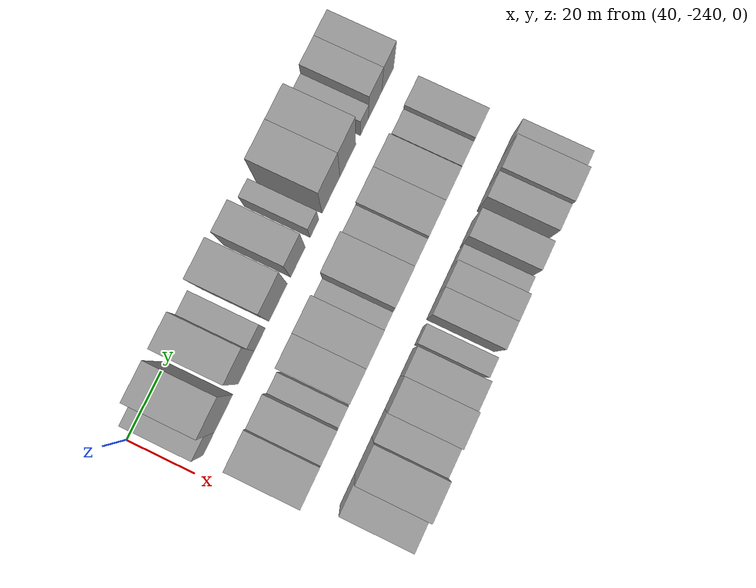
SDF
<sdf version="1.6">
 <world name="default">
  <model name="building_13">
   <static>1</static>
   <pose>50.0000 -231.6286 0 0.000000 0.000000 0.000000</pose>
   <link name="link">
    <pose>0 0 7.50 0 0 0</pose>
    <collision name="collision"><geometry><box><size>20.0000 6.5844 15.0000</size></box></geometry></collision>
    <visual name="visual">
     <cast_shadows>0</cast_shadows>
     <geometry><box><size>20.0000 6.5844 15.0000</size></box></geometry>
     <material>
      <script>
       <uri>model://grey_wall/materials/scripts</uri>
       <uri>model://grey_wall/materials/textures</uri>
       <name>vrc/grey_wall</name>
      </script>
     </material>
    </visual>
   </link>
  </model>
  <model name="building_14">
   <static>1</static>
   <pose>50.0000 -222.8365 0 0.000000 0.000000 0.000000</pose>
   <link name="link">
    <pose>0 0 12.00 0 0 0</pose>
    <collision name="collision"><geometry><box><size>20.0000 10.9997 24.0000</size></box></geometry></collision>
    <visual name="visual">
     <cast_shadows>0</cast_shadows>
     <geometry><box><size>20.0000 10.9997 24.0000</size></box></geometry>
     <material>
      <script>
       <uri>model://grey_wall/materials/scripts</uri>
       <uri>model://grey_wall/materials/textures</uri>
       <name>vrc/grey_wall</name>
      </script>
     </material>
    </visual>
   </link>
  </model>
  <model name="building_15">
   <static>1</static>
   <pose>50.0000 -209.4388 0 0.000000 0.000000 0.000000</pose>
   <link name="link">
    <pose>0 0 12.00 0 0 0</pose>
    <collision name="collision"><geometry><box><size>20.0000 9.7958 24.0000</size></box></geometry></collision>
    <visual name="visual">
     <cast_shadows>0</cast_shadows>
     <geometry><box><size>20.0000 9.7958 24.0000</size></box></geometry>
     <material>
      <script>
       <uri>model://grey_wall/materials/scripts</uri>
       <uri>model://grey_wall/materials/textures</uri>
       <name>vrc/grey_wall</name>
      </script>
     </material>
    </visual>
   </link>
  </model>
  <model name="building_16">
   <static>1</static>
   <pose>50.0000 -201.1808 0 0.000000 0.000000 0.000000</pose>
   <link name="link">
    <pose>0 0 7.50 0 0 0</pose>
    <collision name="collision"><geometry><box><size>20.0000 6.7202 15.0000</size></box></geometry></collision>
    <visual name="visual">
     <cast_shadows>0</cast_shadows>
     <geometry><box><size>20.0000 6.7202 15.0000</size></box></geometry>
     <material>
      <script>
       <uri>model://grey_wall/materials/scripts</uri>
       <uri>model://grey_wall/materials/textures</uri>
       <name>vrc/grey_wall</name>
      </script>
     </material>
    </visual>
   </link>
  </model>
  <model name="building_17">
   <static>1</static>
   <pose>50.0000 -190.1766 0 0.000000 0.000000 0.000000</pose>
   <link name="link">
    <pose>0 0 12.00 0 0 0</pose>
    <collision name="collision"><geometry><box><size>20.0000 11.2882 24.0000</size></box></geometry></collision>
    <visual name="visual">
     <cast_shadows>0</cast_shadows>
     <geometry><box><size>20.0000 11.2882 24.0000</size></box></geometry>
     <material>
      <script>
       <uri>model://grey_wall/materials/scripts</uri>
       <uri>model://grey_wall/materials/textures</uri>
       <name>vrc/grey_wall</name>
      </script>
     </material>
    </visual>
   </link>
  </model>
  <model name="building_18">
   <static>1</static>
   <pose>50.0000 -177.9957 0 0.000000 0.000000 0.000000</pose>
   <link name="link">
    <pose>0 0 10.50 0 0 0</pose>
    <collision name="collision"><geometry><box><size>20.0000 9.0736 21.0000</size></box></geometry></collision>
    <visual name="visual">
     <cast_shadows>0</cast_shadows>
     <geometry><box><size>20.0000 9.0736 21.0000</size></box></geometry>
     <material>
      <script>
       <uri>model://grey_wall/materials/scripts</uri>
       <uri>model://grey_wall/materials/textures</uri>
       <name>vrc/grey_wall</name>
      </script>
     </material>
    </visual>
   </link>
  </model>
  <model name="building_19">
   <static>1</static>
   <pose>50.0000 -167.7257 0 0.000000 0.000000 0.000000</pose>
   <link name="link">
    <pose>0 0 6.00 0 0 0</pose>
    <collision name="collision"><geometry><box><size>20.0000 5.4664 12.0000</size></box></geometry></collision>
    <visual name="visual">
     <cast_shadows>0</cast_shadows>
     <geometry><box><size>20.0000 5.4664 12.0000</size></box></geometry>
     <material>
      <script>
       <uri>model://grey_wall/materials/scripts</uri>
       <uri>model://grey_wall/materials/textures</uri>
       <name>vrc/grey_wall</name>
      </script>
     </material>
    </visual>
   </link>
  </model>
  <model name="building_20">
   <static>1</static>
   <pose>50.0000 -157.3953 0 0.000000 0.000000 0.000000</pose>
   <link name="link">
    <pose>0 0 12.00 0 0 0</pose>
    <collision name="collision"><geometry><box><size>20.0000 11.1945 24.0000</size></box></geometry></collision>
    <visual name="visual">
     <cast_shadows>0</cast_shadows>
     <geometry><box><size>20.0000 11.1945 24.0000</size></box></geometry>
     <material>
      <script>
       <uri>model://grey_wall/materials/scripts</uri>
       <uri>model://grey_wall/materials/textures</uri>
       <name>vrc/grey_wall</name>
      </script>
     </material>
    </visual>
   </link>
  </model>
  <model name="building_21">
   <static>1</static>
   <pose>50.0000 -146.7273 0 0.000000 0.000000 0.000000</pose>
   <link name="link">
    <pose>0 0 12.00 0 0 0</pose>
    <collision name="collision"><geometry><box><size>20.0000 10.1413 24.0000</size></box></geometry></collision>
    <visual name="visual">
     <cast_shadows>0</cast_shadows>
     <geometry><box><size>20.0000 10.1413 24.0000</size></box></geometry>
     <material>
      <script>
       <uri>model://grey_wall/materials/scripts</uri>
       <uri>model://grey_wall/materials/textures</uri>
       <name>vrc/grey_wall</name>
      </script>
     </material>
    </visual>
   </link>
  </model>
  <model name="building_22">
   <static>1</static>
   <pose>50.0000 -136.1086 0 0.000000 0.000000 0.000000</pose>
   <link name="link">
    <pose>0 0 6.00 0 0 0</pose>
    <collision name="collision"><geometry><box><size>20.0000 5.0961 12.0000</size></box></geometry></collision>
    <visual name="visual">
     <cast_shadows>0</cast_shadows>
     <geometry><box><size>20.0000 5.0961 12.0000</size></box></geometry>
     <material>
      <script>
       <uri>model://grey_wall/materials/scripts</uri>
       <uri>model://grey_wall/materials/textures</uri>
       <name>vrc/grey_wall</name>
      </script>
     </material>
    </visual>
   </link>
  </model>
  <model name="building_23">
   <static>1</static>
   <pose>50.0000 -129.1905 0 0.000000 0.000000 0.000000</pose>
   <link name="link">
    <pose>0 0 9.00 0 0 0</pose>
    <collision name="collision"><geometry><box><size>20.0000 8.7401 18.0000</size></box></geometry></collision>
    <visual name="visual">
     <cast_shadows>0</cast_shadows>
     <geometry><box><size>20.0000 8.7401 18.0000</size></box></geometry>
     <material>
      <script>
       <uri>model://grey_wall/materials/scripts</uri>
       <uri>model://grey_wall/materials/textures</uri>
       <name>vrc/grey_wall</name>
      </script>
     </material>
    </visual>
   </link>
  </model>
  <model name="building_24">
   <static>1</static>
   <pose>50.0000 -120.9280 0 0.000000 0.000000 0.000000</pose>
   <link name="link">
    <pose>0 0 9.00 0 0 0</pose>
    <collision name="collision"><geometry><box><size>20.0000 7.7850 18.0000</size></box></geometry></collision>
    <visual name="visual">
     <cast_shadows>0</cast_shadows>
     <geometry><box><size>20.0000 7.7850 18.0000</size></box></geometry>
     <material>
      <script>
       <uri>model://grey_wall/materials/scripts</uri>
       <uri>model://grey_wall/materials/textures</uri>
       <name>vrc/grey_wall</name>
      </script>
     </material>
    </visual>
   </link>
  </model>
  <model name="building_87">
   <static>1</static>
   <pose>79.0000 -226.8092 0 0.000000 0.000000 0.000000</pose>
   <link name="link">
    <pose>0 0 12.00 0 0 0</pose>
    <collision name="collision"><geometry><box><size>20.0000 10.6663 24.0000</size></box></geometry></collision>
    <visual name="visual">
     <cast_shadows>0</cast_shadows>
     <geometry><box><size>20.0000 10.6663 24.0000</size></box></geometry>
     <material>
      <script>
       <uri>model://grey_wall/materials/scripts</uri>
       <uri>model://grey_wall/materials/textures</uri>
       <name>vrc/grey_wall</name>
      </script>
     </material>
    </visual>
   </link>
  </model>
  <model name="building_88">
   <static>1</static>
   <pose>79.0000 -216.9134 0 0.000000 0.000000 0.000000</pose>
   <link name="link">
    <pose>0 0 10.50 0 0 0</pose>
    <collision name="collision"><geometry><box><size>20.0000 9.1253 21.0000</size></box></geometry></collision>
    <visual name="visual">
     <cast_shadows>0</cast_shadows>
     <geometry><box><size>20.0000 9.1253 21.0000</size></box></geometry>
     <material>
      <script>
       <uri>model://grey_wall/materials/scripts</uri>
       <uri>model://grey_wall/materials/textures</uri>
       <name>vrc/grey_wall</name>
      </script>
     </material>
    </visual>
   </link>
  </model>
  <model name="building_89">
   <static>1</static>
   <pose>79.0000 -209.4420 0 0.000000 0.000000 0.000000</pose>
   <link name="link">
    <pose>0 0 6.00 0 0 0</pose>
    <collision name="collision"><geometry><box><size>20.0000 5.8174 12.0000</size></box></geometry></collision>
    <visual name="visual">
     <cast_shadows>0</cast_shadows>
     <geometry><box><size>20.0000 5.8174 12.0000</size></box></geometry>
     <material>
      <script>
       <uri>model://grey_wall/materials/scripts</uri>
       <uri>model://grey_wall/materials/textures</uri>
       <name>vrc/grey_wall</name>
      </script>
     </material>
    </visual>
   </link>
  </model>
  <model name="building_90">
   <static>1</static>
   <pose>79.0000 -200.8661 0 0.000000 0.000000 0.000000</pose>
   <link name="link">
    <pose>0 0 10.50 0 0 0</pose>
    <collision name="collision"><geometry><box><size>20.0000 9.3345 21.0000</size></box></geometry></collision>
    <visual name="visual">
     <cast_shadows>0</cast_shadows>
     <geometry><box><size>20.0000 9.3345 21.0000</size></box></geometry>
     <material>
      <script>
       <uri>model://grey_wall/materials/scripts</uri>
       <uri>model://grey_wall/materials/textures</uri>
       <name>vrc/grey_wall</name>
      </script>
     </material>
    </visual>
   </link>
  </model>
  <model name="building_91">
   <static>1</static>
   <pose>79.0000 -191.0532 0 0.000000 0.000000 0.000000</pose>
   <link name="link">
    <pose>0 0 10.50 0 0 0</pose>
    <collision name="collision"><geometry><box><size>20.0000 10.2913 21.0000</size></box></geometry></collision>
    <visual name="visual">
     <cast_shadows>0</cast_shadows>
     <geometry><box><size>20.0000 10.2913 21.0000</size></box></geometry>
     <material>
      <script>
       <uri>model://grey_wall/materials/scripts</uri>
       <uri>model://grey_wall/materials/textures</uri>
       <name>vrc/grey_wall</name>
      </script>
     </material>
    </visual>
   </link>
  </model>
  <model name="building_92">
   <static>1</static>
   <pose>79.0000 -183.0735 0 0.000000 0.000000 0.000000</pose>
   <link name="link">
    <pose>0 0 6.00 0 0 0</pose>
    <collision name="collision"><geometry><box><size>20.0000 5.6679 12.0000</size></box></geometry></collision>
    <visual name="visual">
     <cast_shadows>0</cast_shadows>
     <geometry><box><size>20.0000 5.6679 12.0000</size></box></geometry>
     <material>
      <script>
       <uri>model://grey_wall/materials/scripts</uri>
       <uri>model://grey_wall/materials/textures</uri>
       <name>vrc/grey_wall</name>
      </script>
     </material>
    </visual>
   </link>
  </model>
  <model name="building_93">
   <static>1</static>
   <pose>79.0000 -174.6421 0 0.000000 0.000000 0.000000</pose>
   <link name="link">
    <pose>0 0 12.00 0 0 0</pose>
    <collision name="collision"><geometry><box><size>20.0000 11.1949 24.0000</size></box></geometry></collision>
    <visual name="visual">
     <cast_shadows>0</cast_shadows>
     <geometry><box><size>20.0000 11.1949 24.0000</size></box></geometry>
     <material>
      <script>
       <uri>model://grey_wall/materials/scripts</uri>
       <uri>model://grey_wall/materials/textures</uri>
       <name>vrc/grey_wall</name>
      </script>
     </material>
    </visual>
   </link>
  </model>
  <model name="building_94">
   <static>1</static>
   <pose>79.0000 -164.7249 0 0.000000 0.000000 0.000000</pose>
   <link name="link">
    <pose>0 0 9.00 0 0 0</pose>
    <collision name="collision"><geometry><box><size>20.0000 8.6396 18.0000</size></box></geometry></collision>
    <visual name="visual">
     <cast_shadows>0</cast_shadows>
     <geometry><box><size>20.0000 8.6396 18.0000</size></box></geometry>
     <material>
      <script>
       <uri>model://grey_wall/materials/scripts</uri>
       <uri>model://grey_wall/materials/textures</uri>
       <name>vrc/grey_wall</name>
      </script>
     </material>
    </visual>
   </link>
  </model>
  <model name="building_95">
   <static>1</static>
   <pose>79.0000 -155.3647 0 0.000000 0.000000 0.000000</pose>
   <link name="link">
    <pose>0 0 10.50 0 0 0</pose>
    <collision name="collision"><geometry><box><size>20.0000 10.0809 21.0000</size></box></geometry></collision>
    <visual name="visual">
     <cast_shadows>0</cast_shadows>
     <geometry><box><size>20.0000 10.0809 21.0000</size></box></geometry>
     <material>
      <script>
       <uri>model://grey_wall/materials/scripts</uri>
       <uri>model://grey_wall/materials/textures</uri>
       <name>vrc/grey_wall</name>
      </script>
     </material>
    </visual>
   </link>
  </model>
  <model name="building_96">
   <static>1</static>
   <pose>79.0000 -145.6294 0 0.000000 0.000000 0.000000</pose>
   <link name="link">
    <pose>0 0 10.50 0 0 0</pose>
    <collision name="collision"><geometry><box><size>20.0000 9.3896 21.0000</size></box></geometry></collision>
    <visual name="visual">
     <cast_shadows>0</cast_shadows>
     <geometry><box><size>20.0000 9.3896 21.0000</size></box></geometry>
     <material>
      <script>
       <uri>model://grey_wall/materials/scripts</uri>
       <uri>model://grey_wall/materials/textures</uri>
       <name>vrc/grey_wall</name>
      </script>
     </material>
    </visual>
   </link>
  </model>
  <model name="building_97">
   <static>1</static>
   <pose>79.0000 -135.2980 0 0.000000 0.000000 0.000000</pose>
   <link name="link">
    <pose>0 0 7.50 0 0 0</pose>
    <collision name="collision"><geometry><box><size>20.0000 7.2731 15.0000</size></box></geometry></collision>
    <visual name="visual">
     <cast_shadows>0</cast_shadows>
     <geometry><box><size>20.0000 7.2731 15.0000</size></box></geometry>
     <material>
      <script>
       <uri>model://grey_wall/materials/scripts</uri>
       <uri>model://grey_wall/materials/textures</uri>
       <name>vrc/grey_wall</name>
      </script>
     </material>
    </visual>
   </link>
  </model>
  <model name="building_98">
   <static>1</static>
   <pose>79.0000 -127.3431 0 0.000000 0.000000 0.000000</pose>
   <link name="link">
    <pose>0 0 9.00 0 0 0</pose>
    <collision name="collision"><geometry><box><size>20.0000 8.6368 18.0000</size></box></geometry></collision>
    <visual name="visual">
     <cast_shadows>0</cast_shadows>
     <geometry><box><size>20.0000 8.6368 18.0000</size></box></geometry>
     <material>
      <script>
       <uri>model://grey_wall/materials/scripts</uri>
       <uri>model://grey_wall/materials/textures</uri>
       <name>vrc/grey_wall</name>
      </script>
     </material>
    </visual>
   </link>
  </model>
  <model name="building_163">
   <static>1</static>
   <pose>108.0000 -226.1937 0 0.000000 0.000000 0.000000</pose>
   <link name="link">
    <pose>0 0 9.00 0 0 0</pose>
    <collision name="collision"><geometry><box><size>20.0000 8.8339 18.0000</size></box></geometry></collision>
    <visual name="visual">
     <cast_shadows>0</cast_shadows>
     <geometry><box><size>20.0000 8.8339 18.0000</size></box></geometry>
     <material>
      <script>
       <uri>model://grey_wall/materials/scripts</uri>
       <uri>model://grey_wall/materials/textures</uri>
       <name>vrc/grey_wall</name>
      </script>
     </material>
    </visual>
   </link>
  </model>
  <model name="building_164">
   <static>1</static>
   <pose>108.0000 -216.5209 0 0.000000 0.000000 0.000000</pose>
   <link name="link">
    <pose>0 0 12.00 0 0 0</pose>
    <collision name="collision"><geometry><box><size>20.0000 10.5118 24.0000</size></box></geometry></collision>
    <visual name="visual">
     <cast_shadows>0</cast_shadows>
     <geometry><box><size>20.0000 10.5118 24.0000</size></box></geometry>
     <material>
      <script>
       <uri>model://grey_wall/materials/scripts</uri>
       <uri>model://grey_wall/materials/textures</uri>
       <name>vrc/grey_wall</name>
      </script>
     </material>
    </visual>
   </link>
  </model>
  <model name="building_165">
   <static>1</static>
   <pose>108.0000 -207.3585 0 0.000000 0.000000 0.000000</pose>
   <link name="link">
    <pose>0 0 9.00 0 0 0</pose>
    <collision name="collision"><geometry><box><size>20.0000 7.8129 18.0000</size></box></geometry></collision>
    <visual name="visual">
     <cast_shadows>0</cast_shadows>
     <geometry><box><size>20.0000 7.8129 18.0000</size></box></geometry>
     <material>
      <script>
       <uri>model://grey_wall/materials/scripts</uri>
       <uri>model://grey_wall/materials/textures</uri>
       <name>vrc/grey_wall</name>
      </script>
     </material>
    </visual>
   </link>
  </model>
  <model name="building_166">
   <static>1</static>
   <pose>108.0000 -198.6163 0 0.000000 0.000000 0.000000</pose>
   <link name="link">
    <pose>0 0 10.50 0 0 0</pose>
    <collision name="collision"><geometry><box><size>20.0000 9.6715 21.0000</size></box></geometry></collision>
    <visual name="visual">
     <cast_shadows>0</cast_shadows>
     <geometry><box><size>20.0000 9.6715 21.0000</size></box></geometry>
     <material>
      <script>
       <uri>model://grey_wall/materials/scripts</uri>
       <uri>model://grey_wall/materials/textures</uri>
       <name>vrc/grey_wall</name>
      </script>
     </material>
    </visual>
   </link>
  </model>
  <model name="building_167">
   <static>1</static>
   <pose>108.0000 -189.7445 0 0.000000 0.000000 0.000000</pose>
   <link name="link">
    <pose>0 0 9.00 0 0 0</pose>
    <collision name="collision"><geometry><box><size>20.0000 8.0721 18.0000</size></box></geometry></collision>
    <visual name="visual">
     <cast_shadows>0</cast_shadows>
     <geometry><box><size>20.0000 8.0721 18.0000</size></box></geometry>
     <material>
      <script>
       <uri>model://grey_wall/materials/scripts</uri>
       <uri>model://grey_wall/materials/textures</uri>
       <name>vrc/grey_wall</name>
      </script>
     </material>
    </visual>
   </link>
  </model>
  <model name="building_168">
   <static>1</static>
   <pose>108.0000 -181.9226 0 0.000000 0.000000 0.000000</pose>
   <link name="link">
    <pose>0 0 6.00 0 0 0</pose>
    <collision name="collision"><geometry><box><size>20.0000 5.5718 12.0000</size></box></geometry></collision>
    <visual name="visual">
     <cast_shadows>0</cast_shadows>
     <geometry><box><size>20.0000 5.5718 12.0000</size></box></geometry>
     <material>
      <script>
       <uri>model://grey_wall/materials/scripts</uri>
       <uri>model://grey_wall/materials/textures</uri>
       <name>vrc/grey_wall</name>
      </script>
     </material>
    </visual>
   </link>
  </model>
  <model name="building_169">
   <static>1</static>
   <pose>108.0000 -173.2814 0 0.000000 0.000000 0.000000</pose>
   <link name="link">
    <pose>0 0 9.00 0 0 0</pose>
    <collision name="collision"><geometry><box><size>20.0000 7.7105 18.0000</size></box></geometry></collision>
    <visual name="visual">
     <cast_shadows>0</cast_shadows>
     <geometry><box><size>20.0000 7.7105 18.0000</size></box></geometry>
     <material>
      <script>
       <uri>model://grey_wall/materials/scripts</uri>
       <uri>model://grey_wall/materials/textures</uri>
       <name>vrc/grey_wall</name>
      </script>
     </material>
    </visual>
   </link>
  </model>
  <model name="building_170">
   <static>1</static>
   <pose>108.0000 -165.6960 0 0.000000 0.000000 0.000000</pose>
   <link name="link">
    <pose>0 0 9.00 0 0 0</pose>
    <collision name="collision"><geometry><box><size>20.0000 7.4602 18.0000</size></box></geometry></collision>
    <visual name="visual">
     <cast_shadows>0</cast_shadows>
     <geometry><box><size>20.0000 7.4602 18.0000</size></box></geometry>
     <material>
      <script>
       <uri>model://grey_wall/materials/scripts</uri>
       <uri>model://grey_wall/materials/textures</uri>
       <name>vrc/grey_wall</name>
      </script>
     </material>
    </visual>
   </link>
  </model>
  <model name="building_171">
   <static>1</static>
   <pose>108.0000 -159.1770 0 0.000000 0.000000 0.000000</pose>
   <link name="link">
    <pose>0 0 6.00 0 0 0</pose>
    <collision name="collision"><geometry><box><size>20.0000 5.5778 12.0000</size></box></geometry></collision>
    <visual name="visual">
     <cast_shadows>0</cast_shadows>
     <geometry><box><size>20.0000 5.5778 12.0000</size></box></geometry>
     <material>
      <script>
       <uri>model://grey_wall/materials/scripts</uri>
       <uri>model://grey_wall/materials/textures</uri>
       <name>vrc/grey_wall</name>
      </script>
     </material>
    </visual>
   </link>
  </model>
  <model name="building_172">
   <static>1</static>
   <pose>108.0000 -151.3363 0 0.000000 0.000000 0.000000</pose>
   <link name="link">
    <pose>0 0 9.00 0 0 0</pose>
    <collision name="collision"><geometry><box><size>20.0000 8.1036 18.0000</size></box></geometry></collision>
    <visual name="visual">
     <cast_shadows>0</cast_shadows>
     <geometry><box><size>20.0000 8.1036 18.0000</size></box></geometry>
     <material>
      <script>
       <uri>model://grey_wall/materials/scripts</uri>
       <uri>model://grey_wall/materials/textures</uri>
       <name>vrc/grey_wall</name>
      </script>
     </material>
    </visual>
   </link>
  </model>
  <model name="building_173">
   <static>1</static>
   <pose>108.0000 -140.5431 0 0.000000 0.000000 0.000000</pose>
   <link name="link">
    <pose>0 0 9.00 0 0 0</pose>
    <collision name="collision"><geometry><box><size>20.0000 7.4827 18.0000</size></box></geometry></collision>
    <visual name="visual">
     <cast_shadows>0</cast_shadows>
     <geometry><box><size>20.0000 7.4827 18.0000</size></box></geometry>
     <material>
      <script>
       <uri>model://grey_wall/materials/scripts</uri>
       <uri>model://grey_wall/materials/textures</uri>
       <name>vrc/grey_wall</name>
      </script>
     </material>
    </visual>
   </link>
  </model>
  <model name="building_174">
   <static>1</static>
   <pose>108.0000 -131.9885 0 0.000000 0.000000 0.000000</pose>
   <link name="link">
    <pose>0 0 10.50 0 0 0</pose>
    <collision name="collision"><geometry><box><size>20.0000 9.6266 21.0000</size></box></geometry></collision>
    <visual name="visual">
     <cast_shadows>0</cast_shadows>
     <geometry><box><size>20.0000 9.6266 21.0000</size></box></geometry>
     <material>
      <script>
       <uri>model://grey_wall/materials/scripts</uri>
       <uri>model://grey_wall/materials/textures</uri>
       <name>vrc/grey_wall</name>
      </script>
     </material>
    </visual>
   </link>
  </model>
  <model name="building_175">
   <static>1</static>
   <pose>108.0000 -123.9143 0 0.000000 0.000000 0.000000</pose>
   <link name="link">
    <pose>0 0 7.50 0 0 0</pose>
    <collision name="collision"><geometry><box><size>20.0000 6.5218 15.0000</size></box></geometry></collision>
    <visual name="visual">
     <cast_shadows>0</cast_shadows>
     <geometry><box><size>20.0000 6.5218 15.0000</size></box></geometry>
     <material>
      <script>
       <uri>model://grey_wall/materials/scripts</uri>
       <uri>model://grey_wall/materials/textures</uri>
       <name>vrc/grey_wall</name>
      </script>
     </material>
    </visual>
   </link>
  </model>
 </world>
</sdf>
